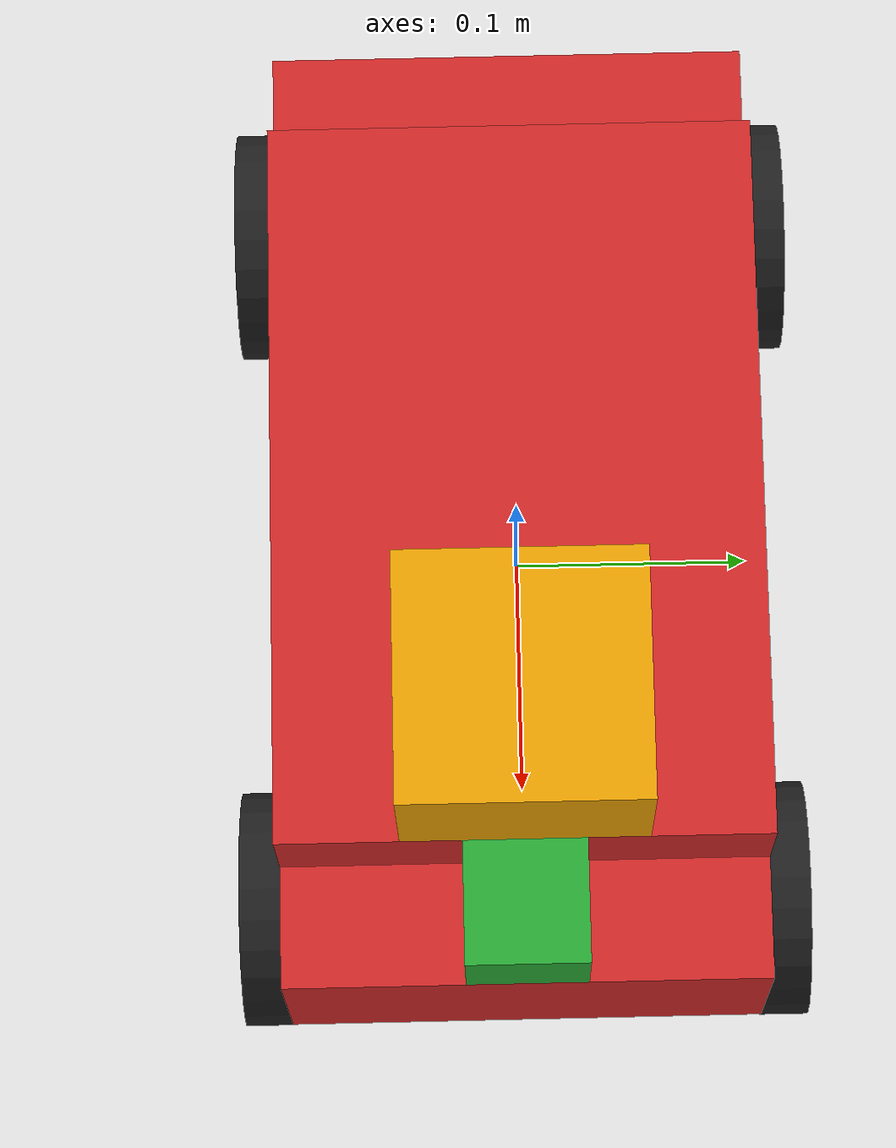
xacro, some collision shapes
<?xml version="1.0"?>

<robot name="my_robot" xmlns:xacro="http://www.ros.org/wiki/xacro">

<xacro:include filename="$(find my_robot)/urdf/my_robot.gazebo" />

  <link name="robot_footprint"></link>

  <joint name="robot_footprint_joint" type="fixed">
    <origin xyz="0 0 0" rpy="0 0 0" />
    <parent link="robot_footprint" />
    <child link="chassis" />
  </joint>

  <link name="chassis">
    <pose>0 0 0.1 0 0 0</pose>

    <inertial>
      <mass value="15.0" />
      <origin xyz="0 0 0" rpy="0 0 0" />
      <inertia
        ixx="0.1" ixy="0" ixz="0"
        iyy="0.1" iyz="0"
        izz="0.1"
      />
    </inertial>

    <collision name="collision">
      <origin xyz="0 0 0.05" rpy="0 0 0" />
      <geometry>
        <box size=".4 .2 .1" />
      </geometry>
    </collision>

    <visual name="chassis_visual">
      <origin xyz="0 0 0.05" rpy="0 0 0" />
      <geometry>
        <box size=".4 .2 .1" />
      </geometry>
    </visual>

    <collision name="collision1">
      <origin xyz="0 0 0.125" rpy="0 0 0" />
      <geometry>
        <box size=".3 .2 .05" />
      </geometry>
    </collision>

    <visual name="chassis_visual1">
      <origin xyz="0 0 0.125" rpy="0 0 0" />
      <geometry>
        <box size=".3 .2 .05" />
      </geometry>
    </visual>

  </link>
  <gazebo reference="chassis">
    <material>Gazebo/Red</material>
  </gazebo>

  <link name="front_left_wheel">

    <inertial>
      <mass value="5.0" />
      <origin xyz="0 0.01 0" rpy="0 1.5707 1.5707" />
      <inertia
        ixx="0.1" ixy="0" ixz="0"
        iyy="0.1" iyz="0"
        izz="0.1"
      />
    </inertial>

    <collision>
      <origin xyz="0 0.01 0" rpy="0 1.5707 1.5707" />
      <geometry>
        <cylinder radius="0.05" length="0.02" />
      </geometry>
    </collision>

    <visual>
      <origin xyz="0 0.01 0" rpy="0 1.5707 1.5707" />
      <geometry>
        <cylinder radius="0.05" length="0.02" />
      </geometry>
    </visual>

  </link>

  <link name="front_right_wheel">

    <inertial>
      <mass value="5.0" />
      <origin xyz="0 -0.01 0" rpy="0 1.5707 1.5707" />
      <inertia
        ixx="0.1" ixy="0" ixz="0"
        iyy="0.1" iyz="0"
        izz="0.1"
      />
    </inertial>

    <collision>
      <origin xyz="0 -0.01 0" rpy="0 1.5707 1.5707" />
      <geometry>
        <cylinder radius="0.05" length="0.02" />
      </geometry>
    </collision>

    <visual>
      <origin xyz="0 -0.01 0" rpy="0 1.5707 1.5707" />
      <geometry>
        <cylinder radius="0.05" length="0.02" />
      </geometry>
    </visual>

  </link>

  <link name="back_left_wheel">

    <inertial>
      <mass value="5.0" />
      <origin xyz="0 0.01 0" rpy="0 1.5707 1.5707" />
      <inertia
        ixx="0.1" ixy="0" ixz="0"
        iyy="0.1" iyz="0"
        izz="0.1"
      />
    </inertial>

    <collision>
      <origin xyz="0 0.01 0" rpy="0 1.5707 1.5707" />
      <geometry>
        <cylinder radius="0.05" length="0.02" />
      </geometry>
    </collision>

    <visual>
      <origin xyz="0 0.01 0" rpy="0 1.5707 1.5707" />
      <geometry>
        <cylinder radius="0.05" length="0.02" />
      </geometry>
    </visual>

  </link>

  <link name="back_right_wheel">

    <inertial>
      <mass value="5.0" />
      <origin xyz="0 -0.01 0" rpy="0 1.5707 1.5707" />
      <inertia
        ixx="0.1" ixy="0" ixz="0"
        iyy="0.1" iyz="0"
        izz="0.1"
      />
    </inertial>

    <collision>
      <origin xyz="0 -0.01 0" rpy="0 1.5707 1.5707" />
      <geometry>
        <cylinder radius="0.05" length="0.02" />
      </geometry>
    </collision>

    <visual>
      <origin xyz="0 -0.01 0" rpy="0 1.5707 1.5707" />
      <geometry>
        <cylinder radius="0.05" length="0.02" />
      </geometry>
    </visual>

  </link>

  <gazebo reference="front_left_wheel">
    <material>Gazebo/Black</material>
  </gazebo>

  <gazebo reference="front_right_wheel">
    <material>Gazebo/Black</material>
  </gazebo>

  <gazebo reference="back_left_wheel">
    <material>Gazebo/Black</material>
  </gazebo>

  <gazebo reference="back_right_wheel">
    <material>Gazebo/Black</material>
  </gazebo>

  <joint type="continuous" name="f_left_wheel_hinge">
    <origin xyz=".15 0.1 0" rpy="0 0 0" />
    <child link="front_left_wheel" />
    <parent link="chassis" />
    <axis xyz="0 1 0" rpy="0 0 0" />
    <limit effort="10000" velocity="1000" />
    <dynamics damping="1.0" friction="1.0" />
  </joint>

  <joint type="continuous" name="f_right_wheel_hinge">
    <origin xyz=".15 -0.1 0" rpy="0 0 0" />
    <child link="front_right_wheel" />
    <parent link="chassis" />
    <axis xyz="0 1 0" rpy="0 0 0" />
    <limit effort="10000" velocity="1000" />
    <dynamics damping="1.0" friction="1.0" />
  </joint>

  <joint type="continuous" name="b_left_wheel_hinge">
    <origin xyz="-0.15 0.1 0" rpy="0 0 0" />
    <child link="back_left_wheel" />
    <parent link="chassis" />
    <axis xyz="0 1 0" rpy="0 0 0" />
    <limit effort="10000" velocity="1000" />
    <dynamics damping="1.0" friction="1.0" />
  </joint>

  <joint type="continuous" name="b_right_wheel_hinge">
    <origin xyz="-0.15 -0.1 0" rpy="0 0 0" />
    <child link="back_right_wheel" />
    <parent link="chassis" />
    <axis xyz="0 1 0" rpy="0 0 0" />
    <limit effort="10000" velocity="1000" />
    <dynamics damping="1.0" friction="1.0" />
  </joint>

  <link name="camera">

    <box_inertia m="0.1" x="0.05" y="0.05" z="0.05" />
   <inertial>
      <mass value="0.1"/>
      <inertia
	ixx="1e-6" ixy="0" ixz="0"
        iyy="1e-6" iyz="0"
        izz="1e-6" />
    </inertial>

    <collision>
      <origin xyz="0 0 0" rpy="0 0 0" />
      <geometry>
        <box size="0.05 0.05 0.05" />
      </geometry>
    </collision>

    <visual>
      <origin xyz="0 0 0" rpy="0 0 0" />
      <geometry>
        <box size="0.05 0.05 0.05" />
      </geometry>
    </visual>

  </link>

  <gazebo reference="camera">
    <material>Gazebo/Green</material>
  </gazebo>

  <joint type="fixed" name="camera_joint">
    <origin xyz="0.175 0 0.125" rpy="0 0 0" />
    <axis xyz="0 1 0" rpy="0 0 0" />
    <parent link="chassis" />
    <child link="camera" />
  </joint>

  <link name="camera_link_optical">
  </link>

  <joint name="camera_optical_joint" type="fixed">
    <origin xyz="0 0 0" rpy="-1.5707 0 -1.5707"/>
    <parent link="camera"/>
    <child link="camera_link_optical"/>
  </joint>

  <gazebo reference="camera_link_optical">
    <material>Gazebo/Blue</material>
  </gazebo>

  <link name="hokuyo">

    <inertial>
      <mass value="1e-5" />
      <inertia
        ixx="1e-6" ixy="0" ixz="0"
        iyy="1e-6" iyz="0"
        izz="1e-6"
      />
    </inertial>

    <collision>
      <origin xyz="0 0 0" rpy="0 0 0" />
      <geometry>
        <box size="0.1 0.1 0.1" />
      </geometry>
    </collision>

    <visual>
      <origin xyz="0 0 0" rpy="0 0 0" />
      <geometry>
        <mesh filename="package://my_robot/meshes/hokuyo.dae" />
      </geometry>
    </visual>

  </link>

  <joint name="hokuyo_fixed" type="fixed">
    <origin xyz="0.1 0 0.175" rpy="0 0 0"/>
    <axis xyz="0 1 0" rpy="0 0 0"/>
    <parent link="chassis" />
    <child link="hokuyo" />
  </joint>

</robot>
